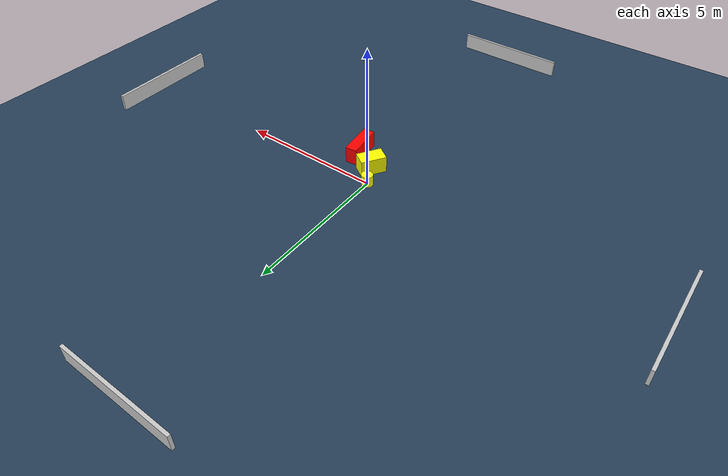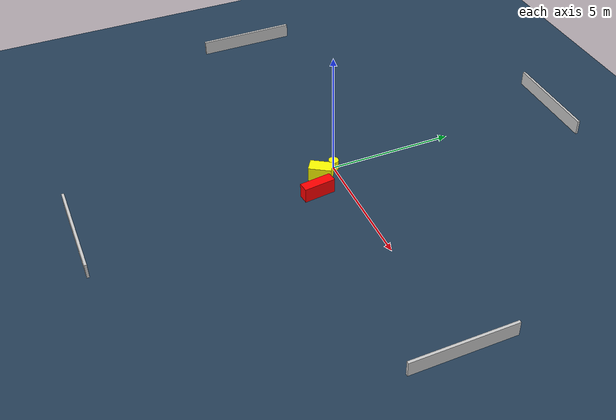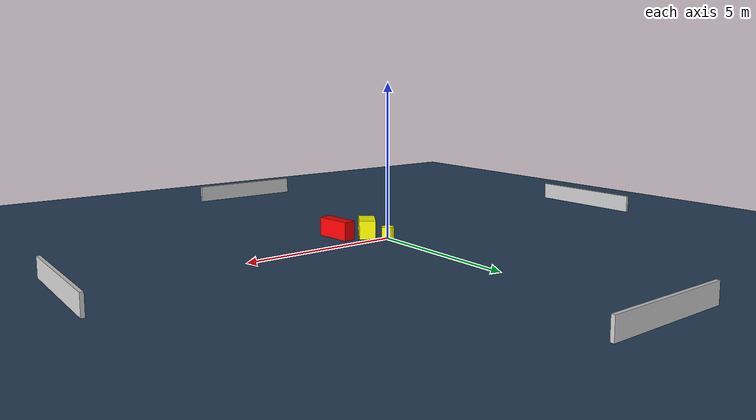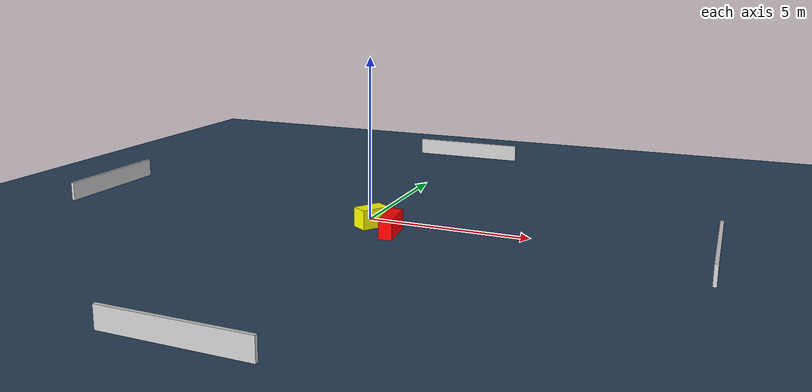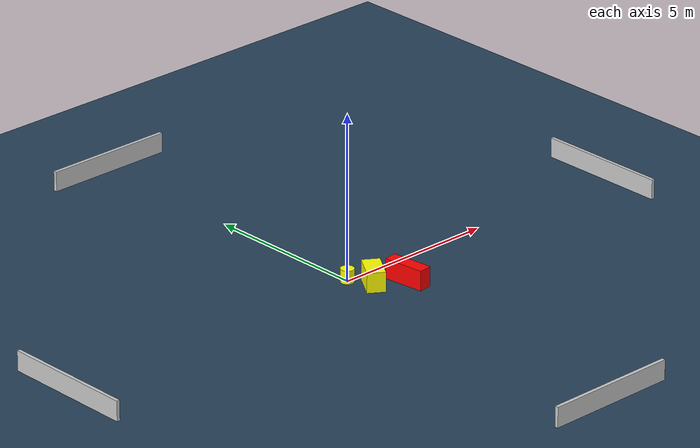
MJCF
<?xml version="1.0" ?>
<mujoco model="generated_environment">
  <option timestep="0.01" integrator="RK4" cone="elliptic"/>
  <default>
    <geom density="1"/>
  </default>
  <asset>
    <texture builtin="gradient" height="3072" name="skybox" rgb1="0.3 0.5 0.7" rgb2="0 0 0" type="skybox" width="512"/>
    <texture builtin="checker" height="300" name="groundplane" rgb1="0.2 0.3 0.4" rgb2="0.1 0.2 0.3" type="2d" width="300"/>
    <material name="groundplane" reflectance="0.2" texrepeat="5 5" texture="groundplane"/>
  </asset>
  <worldbody>
    <light dir="0 0 -1" directional="true" pos="0 0 1.5"/>
    <geom condim="3" friction="0.5 0.005 0.001" material="groundplane" name="floor" pos="0 0 0" size="0 0 0.05" type="plane"/>
    <body name="walls">
      <geom name="wall_1" condim="4" pos="-10.0 0.0 0.3" rgba="0.800000011920929 0.800000011920929 0.800000011920929 1.0" size="0.05 2.0 0.3" type="box"/>
      <geom name="wall_2" condim="4" pos="10.0 0.0 0.3" rgba="0.800000011920929 0.800000011920929 0.800000011920929 1.0" size="0.05 2.0 0.3" type="box"/>
      <geom name="wall_3" condim="4" pos="0.0 -10.0 0.3" rgba="0.800000011920929 0.800000011920929 0.800000011920929 1.0" size="2.0 0.05 0.3" type="box"/>
      <geom name="wall_4" condim="4" pos="0.0 10.0 0.3" rgba="0.800000011920929 0.800000011920929 0.800000011920929 1.0" size="2.0 0.05 0.3" type="box"/>
    </body>
    <body name="robot">
      <joint name="joint_x" type="slide" pos="0 0 0" axis="1 0 0"/>
      <joint name="joint_y" type="slide" pos="0 0 0" axis="0 1 0"/>
      <geom name="robot" type="cylinder" pos="0.0 0.0 0.2" size="0.2 0.2 0.0" mass="5.0" friction="1.0 0.005 0.0001" condim="4" rgba="1.0 1.0 0.0 1.0"/>
    </body>
    <body name="obstacle_1_movable">
      <geom name="obstacle_1_movable" condim="4" pos="0.33643714267457797 -0.6825287341280774 0.3" euler="0 0 326.95428989397266" friction="0.0 0.005 0.001" rgba="1.0 1.0 0.0 1.0" size="0.26435779634153067 0.4468384799168027 0.3" type="box" mass="0.1"/>
      <joint type="free"/>
    </body>
    <body name="obstacle_2_static">
      <geom name="obstacle_2_static" condim="4" pos="1.1686753754208754 -1.1701199872574053 0.3" euler="0 0 276.50193031610434" friction="0.0 0.005 0.001" rgba="1.0 0.0 0.0 1.0" size="0.6242154201074288 0.200982227111648 0.3" type="box"/>
    </body>
  </worldbody>
  <actuator>
    <motor name="actuator_x" joint="joint_x" gear="1" ctrlrange="-1 1"/>
    <motor name="actuator_y" joint="joint_y" gear="1" ctrlrange="-1 1"/>
  </actuator>
</mujoco>
